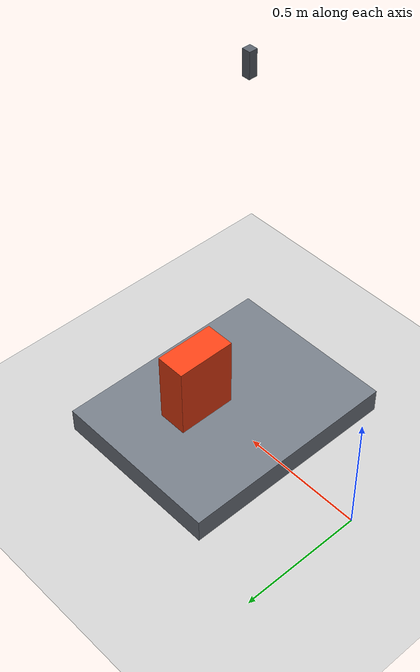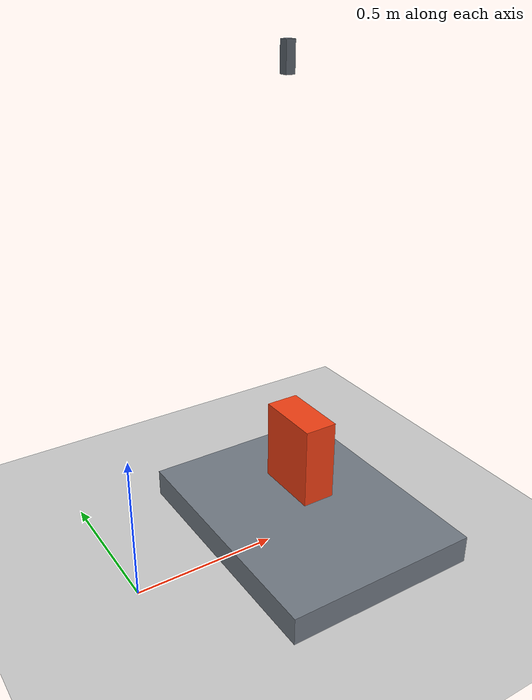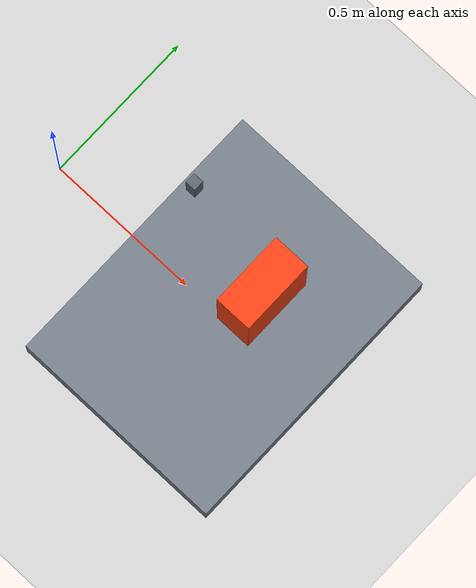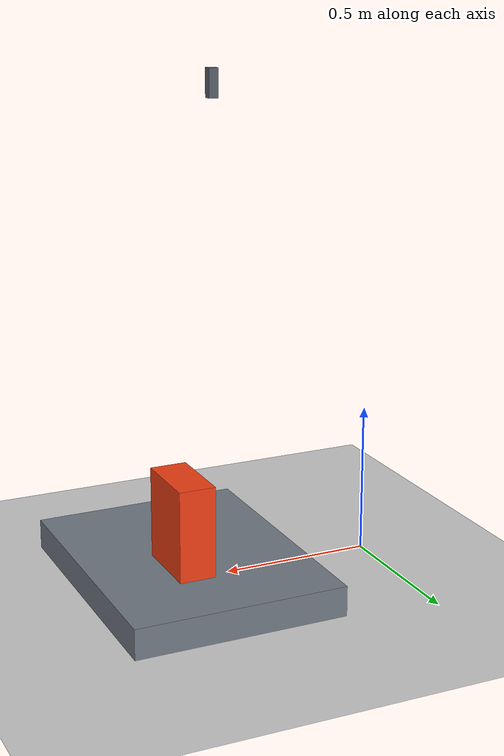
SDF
<?xml version="1.0"?>
<sdf version="1.6">
  <world name="aubo_octomap_planning">
    <include><uri>model://ground_plane</uri></include>
    <include><uri>model://sun</uri></include>

    <!-- Fixed eye-to-hand RGB-D camera. Its ROS frame tree is published by
         aubo_description/eye_to_hand_camera_tf.launch. -->
    <model name="workspace_camera">
      <static>true</static>
      <pose>0.55 0 1.60 0 1.57079632679 0</pose>
      <link name="workspace_camera_link">
        <collision name="camera_body_collision">
          <geometry><box><size>0.09 0.03 0.03</size></box></geometry>
        </collision>
        <visual name="camera_body_visual">
          <geometry><box><size>0.09 0.03 0.03</size></box></geometry>
          <material><ambient>0.20 0.22 0.25 1</ambient><diffuse>0.35 0.38 0.42 1</diffuse></material>
        </visual>
        <sensor type="depth" name="workspace_camera_rgbd">
          <pose>0.045 0 0 0 0 0</pose>
          <always_on>true</always_on>
          <visualize>false</visualize>
          <update_rate>20</update_rate>
          <camera name="workspace_camera_sensor">
            <horizontal_fov>1.0471975512</horizontal_fov>
            <image><width>640</width><height>480</height><format>R8G8B8</format></image>
            <clip><near>0.15</near><far>3.0</far></clip>
          </camera>
          <plugin name="workspace_camera_gazebo_ros_openni"
                  filename="libgazebo_ros_openni_kinect.so">
            <cameraName>workspace_camera</cameraName>
            <imageTopicName>color/image_raw</imageTopicName>
            <cameraInfoTopicName>color/camera_info</cameraInfoTopicName>
            <depthImageTopicName>aligned_depth_to_color/image_raw</depthImageTopicName>
            <depthImageCameraInfoTopicName>aligned_depth_to_color/camera_info</depthImageCameraInfoTopicName>
            <pointCloudTopicName>depth/color/points</pointCloudTopicName>
            <frameName>workspace_camera_color_optical_frame</frameName>
            <pointCloudCutoff>0.15</pointCloudCutoff>
            <pointCloudCutoffMax>3.0</pointCloudCutoffMax>
          </plugin>
        </sensor>
      </link>
    </model>

    <!-- These objects are intentionally NOT added through PlanningScene.
         MoveIt can only discover them through the simulated depth camera. -->
    <model name="work_table">
      <static>true</static>
      <pose>0.65 0 0.05 0 0 0</pose>
      <link name="link">
        <collision name="collision"><geometry><box><size>0.70 0.90 0.10</size></box></geometry></collision>
        <visual name="visual">
          <geometry><box><size>0.70 0.90 0.10</size></box></geometry>
          <material><ambient>0.35 0.38 0.42 1</ambient><diffuse>0.45 0.48 0.52 1</diffuse></material>
        </visual>
      </link>
    </model>

    <model name="camera_discovered_obstacle">
      <static>true</static>
      <pose>0.70 0.10 0.25 0 0 0</pose>
      <link name="link">
        <collision name="collision"><geometry><box><size>0.12 0.24 0.30</size></box></geometry></collision>
        <visual name="visual">
          <geometry><box><size>0.12 0.24 0.30</size></box></geometry>
          <material><ambient>0.75 0.18 0.08 1</ambient><diffuse>0.95 0.25 0.08 1</diffuse></material>
        </visual>
      </link>
    </model>

    <physics name="default_physics" type="ode">
      <max_step_size>0.001</max_step_size>
      <real_time_update_rate>1000</real_time_update_rate>
    </physics>
  </world>
</sdf>
